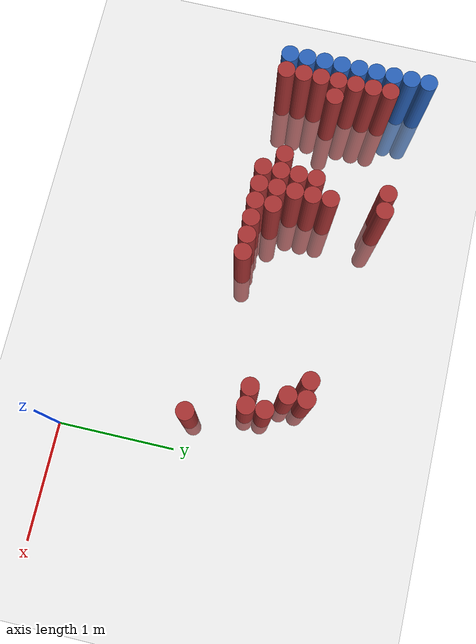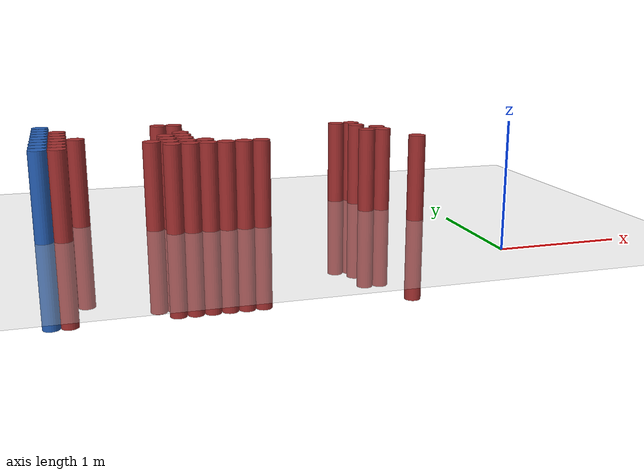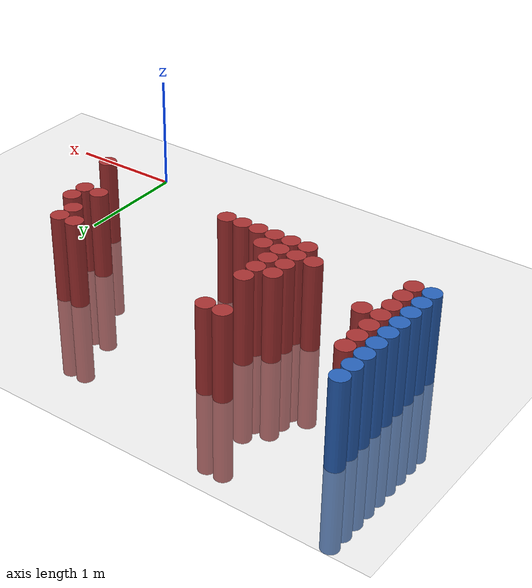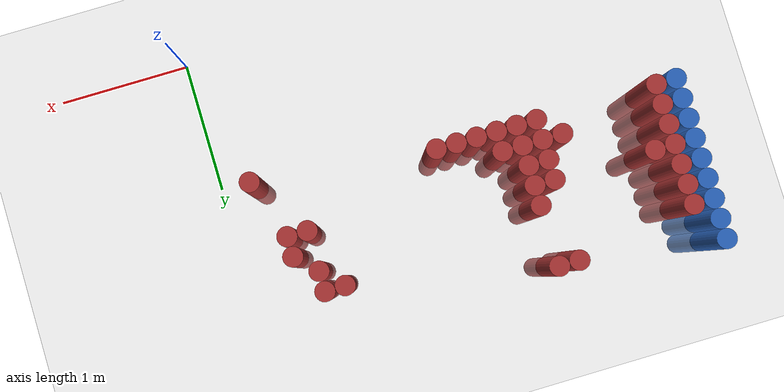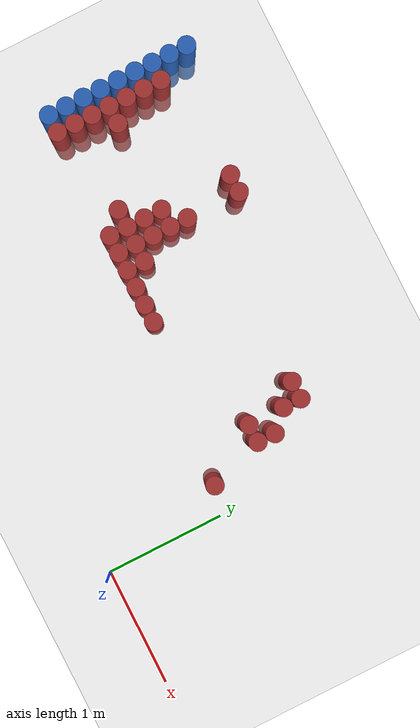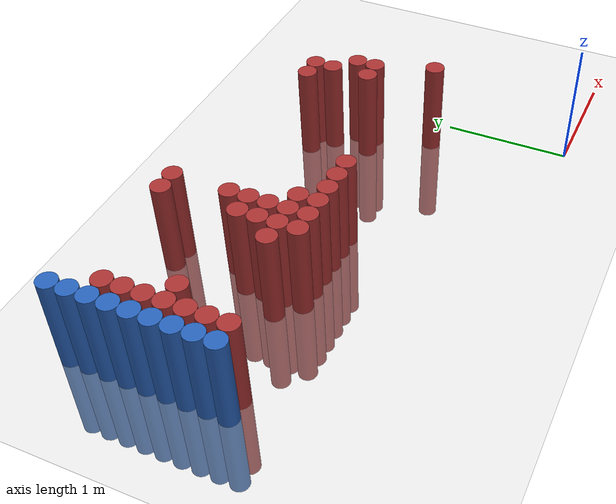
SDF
<sdf version="1.6">
 <world name="default">
  <model name="ground_plane">
   <static>1</static>
   <link name="link">
    <collision name="collision">
     <geometry><plane><normal>0 0 1</normal><size>100 100</size></plane></geometry>
     <surface><friction><ode><mu>100</mu><mu2>50</mu2></ode></friction></surface>
    </collision>
    <visual name="visual">
     <cast_shadows>0</cast_shadows>
     <geometry><plane><normal>0 0 1</normal><size>100 100</size></plane></geometry>
     <material>
      <script><uri>file://media/materials/scripts/gazebo.material</uri><name>Gazebo/Grey</name></script>
     </material>
    </visual>
   </link>
  </model>
  <model name="unit_cylinder_131">
   <static>1</static>
   <pose>-3.425000 1.225000 0.000000 0.000000 0.000000 0.000000</pose>
   <link name="link">
    <inertial>
     <mass>1</mass>
     <inertia><ixx>0.145833</ixx><ixy>0</ixy><ixz>0</ixz><iyy>0.145833</iyy><iyz>0</iyz><izz>0.125</izz></inertia>
    </inertial>
    <collision name="collision">
     <geometry><cylinder><radius>0.075000</radius><length>1.5</length></cylinder></geometry>
    </collision>
    <visual name="visual">
     <geometry><cylinder><radius>0.075000</radius><length>1.5</length></cylinder></geometry>
     <material>
      <ambient>0.152000 0.379000 0.720000 1</ambient>
      <diffuse>0.152000 0.379000 0.720000 1</diffuse>
     </material>
     <material>
      <script><name>Gazebo/Grey</name><uri>file://media/materials/scripts/gazebo.material</uri></script>
     </material>
    </visual>
   </link>
  </model>
  <model name="unit_cylinder_133">
   <static>1</static>
   <pose>-3.425000 1.375000 0.000000 0.000000 0.000000 0.000000</pose>
   <link name="link">
    <inertial>
     <mass>1</mass>
     <inertia><ixx>0.145833</ixx><ixy>0</ixy><ixz>0</ixz><iyy>0.145833</iyy><iyz>0</iyz><izz>0.125</izz></inertia>
    </inertial>
    <collision name="collision">
     <geometry><cylinder><radius>0.075000</radius><length>1.5</length></cylinder></geometry>
    </collision>
    <visual name="visual">
     <geometry><cylinder><radius>0.075000</radius><length>1.5</length></cylinder></geometry>
     <material>
      <ambient>0.152000 0.379000 0.720000 1</ambient>
      <diffuse>0.152000 0.379000 0.720000 1</diffuse>
     </material>
     <material>
      <script><name>Gazebo/Grey</name><uri>file://media/materials/scripts/gazebo.material</uri></script>
     </material>
    </visual>
   </link>
  </model>
  <model name="unit_cylinder_135">
   <static>1</static>
   <pose>-3.425000 1.525000 0.000000 0.000000 0.000000 0.000000</pose>
   <link name="link">
    <inertial>
     <mass>1</mass>
     <inertia><ixx>0.145833</ixx><ixy>0</ixy><ixz>0</ixz><iyy>0.145833</iyy><iyz>0</iyz><izz>0.125</izz></inertia>
    </inertial>
    <collision name="collision">
     <geometry><cylinder><radius>0.075000</radius><length>1.5</length></cylinder></geometry>
    </collision>
    <visual name="visual">
     <geometry><cylinder><radius>0.075000</radius><length>1.5</length></cylinder></geometry>
     <material>
      <ambient>0.152000 0.379000 0.720000 1</ambient>
      <diffuse>0.152000 0.379000 0.720000 1</diffuse>
     </material>
     <material>
      <script><name>Gazebo/Grey</name><uri>file://media/materials/scripts/gazebo.material</uri></script>
     </material>
    </visual>
   </link>
  </model>
  <model name="unit_cylinder_137">
   <static>1</static>
   <pose>-3.425000 1.675000 0.000000 0.000000 0.000000 0.000000</pose>
   <link name="link">
    <inertial>
     <mass>1</mass>
     <inertia><ixx>0.145833</ixx><ixy>0</ixy><ixz>0</ixz><iyy>0.145833</iyy><iyz>0</iyz><izz>0.125</izz></inertia>
    </inertial>
    <collision name="collision">
     <geometry><cylinder><radius>0.075000</radius><length>1.5</length></cylinder></geometry>
    </collision>
    <visual name="visual">
     <geometry><cylinder><radius>0.075000</radius><length>1.5</length></cylinder></geometry>
     <material>
      <ambient>0.152000 0.379000 0.720000 1</ambient>
      <diffuse>0.152000 0.379000 0.720000 1</diffuse>
     </material>
     <material>
      <script><name>Gazebo/Grey</name><uri>file://media/materials/scripts/gazebo.material</uri></script>
     </material>
    </visual>
   </link>
  </model>
  <model name="unit_cylinder_139">
   <static>1</static>
   <pose>-3.425000 1.825000 0.000000 0.000000 0.000000 0.000000</pose>
   <link name="link">
    <inertial>
     <mass>1</mass>
     <inertia><ixx>0.145833</ixx><ixy>0</ixy><ixz>0</ixz><iyy>0.145833</iyy><iyz>0</iyz><izz>0.125</izz></inertia>
    </inertial>
    <collision name="collision">
     <geometry><cylinder><radius>0.075000</radius><length>1.5</length></cylinder></geometry>
    </collision>
    <visual name="visual">
     <geometry><cylinder><radius>0.075000</radius><length>1.5</length></cylinder></geometry>
     <material>
      <ambient>0.152000 0.379000 0.720000 1</ambient>
      <diffuse>0.152000 0.379000 0.720000 1</diffuse>
     </material>
     <material>
      <script><name>Gazebo/Grey</name><uri>file://media/materials/scripts/gazebo.material</uri></script>
     </material>
    </visual>
   </link>
  </model>
  <model name="unit_cylinder_141">
   <static>1</static>
   <pose>-3.425000 1.975000 0.000000 0.000000 0.000000 0.000000</pose>
   <link name="link">
    <inertial>
     <mass>1</mass>
     <inertia><ixx>0.145833</ixx><ixy>0</ixy><ixz>0</ixz><iyy>0.145833</iyy><iyz>0</iyz><izz>0.125</izz></inertia>
    </inertial>
    <collision name="collision">
     <geometry><cylinder><radius>0.075000</radius><length>1.5</length></cylinder></geometry>
    </collision>
    <visual name="visual">
     <geometry><cylinder><radius>0.075000</radius><length>1.5</length></cylinder></geometry>
     <material>
      <ambient>0.152000 0.379000 0.720000 1</ambient>
      <diffuse>0.152000 0.379000 0.720000 1</diffuse>
     </material>
     <material>
      <script><name>Gazebo/Grey</name><uri>file://media/materials/scripts/gazebo.material</uri></script>
     </material>
    </visual>
   </link>
  </model>
  <model name="unit_cylinder_143">
   <static>1</static>
   <pose>-3.425000 2.125000 0.000000 0.000000 0.000000 0.000000</pose>
   <link name="link">
    <inertial>
     <mass>1</mass>
     <inertia><ixx>0.145833</ixx><ixy>0</ixy><ixz>0</ixz><iyy>0.145833</iyy><iyz>0</iyz><izz>0.125</izz></inertia>
    </inertial>
    <collision name="collision">
     <geometry><cylinder><radius>0.075000</radius><length>1.5</length></cylinder></geometry>
    </collision>
    <visual name="visual">
     <geometry><cylinder><radius>0.075000</radius><length>1.5</length></cylinder></geometry>
     <material>
      <ambient>0.152000 0.379000 0.720000 1</ambient>
      <diffuse>0.152000 0.379000 0.720000 1</diffuse>
     </material>
     <material>
      <script><name>Gazebo/Grey</name><uri>file://media/materials/scripts/gazebo.material</uri></script>
     </material>
    </visual>
   </link>
  </model>
  <model name="unit_cylinder_145">
   <static>1</static>
   <pose>-3.425000 2.275000 0.000000 0.000000 0.000000 0.000000</pose>
   <link name="link">
    <inertial>
     <mass>1</mass>
     <inertia><ixx>0.145833</ixx><ixy>0</ixy><ixz>0</ixz><iyy>0.145833</iyy><iyz>0</iyz><izz>0.125</izz></inertia>
    </inertial>
    <collision name="collision">
     <geometry><cylinder><radius>0.075000</radius><length>1.5</length></cylinder></geometry>
    </collision>
    <visual name="visual">
     <geometry><cylinder><radius>0.075000</radius><length>1.5</length></cylinder></geometry>
     <material>
      <ambient>0.152000 0.379000 0.720000 1</ambient>
      <diffuse>0.152000 0.379000 0.720000 1</diffuse>
     </material>
     <material>
      <script><name>Gazebo/Grey</name><uri>file://media/materials/scripts/gazebo.material</uri></script>
     </material>
    </visual>
   </link>
  </model>
  <model name="unit_cylinder_147">
   <static>1</static>
   <pose>-3.425000 2.425000 0.000000 0.000000 0.000000 0.000000</pose>
   <link name="link">
    <inertial>
     <mass>1</mass>
     <inertia><ixx>0.145833</ixx><ixy>0</ixy><ixz>0</ixz><iyy>0.145833</iyy><iyz>0</iyz><izz>0.125</izz></inertia>
    </inertial>
    <collision name="collision">
     <geometry><cylinder><radius>0.075000</radius><length>1.5</length></cylinder></geometry>
    </collision>
    <visual name="visual">
     <geometry><cylinder><radius>0.075000</radius><length>1.5</length></cylinder></geometry>
     <material>
      <ambient>0.152000 0.379000 0.720000 1</ambient>
      <diffuse>0.152000 0.379000 0.720000 1</diffuse>
     </material>
     <material>
      <script><name>Gazebo/Grey</name><uri>file://media/materials/scripts/gazebo.material</uri></script>
     </material>
    </visual>
   </link>
  </model>
  <model name="unit_cylinder_229">
   <static>1</static>
   <pose>-3.425000 1.225000 0.000000 0.000000 0.000000 0.000000</pose>
   <link name="link">
    <inertial>
     <mass>1</mass>
     <inertia><ixx>0.145833</ixx><ixy>0</ixy><ixz>0</ixz><iyy>0.145833</iyy><iyz>0</iyz><izz>0.125</izz></inertia>
    </inertial>
    <collision name="collision">
     <geometry><cylinder><radius>0.075000</radius><length>1.5</length></cylinder></geometry>
    </collision>
    <visual name="visual">
     <geometry><cylinder><radius>0.075000</radius><length>1.5</length></cylinder></geometry>
     <material>
      <ambient>0.152000 0.379000 0.720000 1</ambient>
      <diffuse>0.152000 0.379000 0.720000 1</diffuse>
     </material>
     <material>
      <script><name>Gazebo/Grey</name><uri>file://media/materials/scripts/gazebo.material</uri></script>
     </material>
    </visual>
   </link>
  </model>
  <model name="unit_cylinder_230">
   <static>1</static>
   <pose>-3.425000 1.375000 0.000000 0.000000 0.000000 0.000000</pose>
   <link name="link">
    <inertial>
     <mass>1</mass>
     <inertia><ixx>0.145833</ixx><ixy>0</ixy><ixz>0</ixz><iyy>0.145833</iyy><iyz>0</iyz><izz>0.125</izz></inertia>
    </inertial>
    <collision name="collision">
     <geometry><cylinder><radius>0.075000</radius><length>1.5</length></cylinder></geometry>
    </collision>
    <visual name="visual">
     <geometry><cylinder><radius>0.075000</radius><length>1.5</length></cylinder></geometry>
     <material>
      <ambient>0.152000 0.379000 0.720000 1</ambient>
      <diffuse>0.152000 0.379000 0.720000 1</diffuse>
     </material>
     <material>
      <script><name>Gazebo/Grey</name><uri>file://media/materials/scripts/gazebo.material</uri></script>
     </material>
    </visual>
   </link>
  </model>
  <model name="unit_cylinder_231">
   <static>1</static>
   <pose>-3.425000 1.525000 0.000000 0.000000 0.000000 0.000000</pose>
   <link name="link">
    <inertial>
     <mass>1</mass>
     <inertia><ixx>0.145833</ixx><ixy>0</ixy><ixz>0</ixz><iyy>0.145833</iyy><iyz>0</iyz><izz>0.125</izz></inertia>
    </inertial>
    <collision name="collision">
     <geometry><cylinder><radius>0.075000</radius><length>1.5</length></cylinder></geometry>
    </collision>
    <visual name="visual">
     <geometry><cylinder><radius>0.075000</radius><length>1.5</length></cylinder></geometry>
     <material>
      <ambient>0.152000 0.379000 0.720000 1</ambient>
      <diffuse>0.152000 0.379000 0.720000 1</diffuse>
     </material>
     <material>
      <script><name>Gazebo/Grey</name><uri>file://media/materials/scripts/gazebo.material</uri></script>
     </material>
    </visual>
   </link>
  </model>
  <model name="unit_cylinder_232">
   <static>1</static>
   <pose>-3.425000 1.675000 0.000000 0.000000 0.000000 0.000000</pose>
   <link name="link">
    <inertial>
     <mass>1</mass>
     <inertia><ixx>0.145833</ixx><ixy>0</ixy><ixz>0</ixz><iyy>0.145833</iyy><iyz>0</iyz><izz>0.125</izz></inertia>
    </inertial>
    <collision name="collision">
     <geometry><cylinder><radius>0.075000</radius><length>1.5</length></cylinder></geometry>
    </collision>
    <visual name="visual">
     <geometry><cylinder><radius>0.075000</radius><length>1.5</length></cylinder></geometry>
     <material>
      <ambient>0.152000 0.379000 0.720000 1</ambient>
      <diffuse>0.152000 0.379000 0.720000 1</diffuse>
     </material>
     <material>
      <script><name>Gazebo/Grey</name><uri>file://media/materials/scripts/gazebo.material</uri></script>
     </material>
    </visual>
   </link>
  </model>
  <model name="unit_cylinder_233">
   <static>1</static>
   <pose>-3.425000 1.825000 0.000000 0.000000 0.000000 0.000000</pose>
   <link name="link">
    <inertial>
     <mass>1</mass>
     <inertia><ixx>0.145833</ixx><ixy>0</ixy><ixz>0</ixz><iyy>0.145833</iyy><iyz>0</iyz><izz>0.125</izz></inertia>
    </inertial>
    <collision name="collision">
     <geometry><cylinder><radius>0.075000</radius><length>1.5</length></cylinder></geometry>
    </collision>
    <visual name="visual">
     <geometry><cylinder><radius>0.075000</radius><length>1.5</length></cylinder></geometry>
     <material>
      <ambient>0.152000 0.379000 0.720000 1</ambient>
      <diffuse>0.152000 0.379000 0.720000 1</diffuse>
     </material>
     <material>
      <script><name>Gazebo/Grey</name><uri>file://media/materials/scripts/gazebo.material</uri></script>
     </material>
    </visual>
   </link>
  </model>
  <model name="unit_cylinder_234">
   <static>1</static>
   <pose>-3.425000 1.975000 0.000000 0.000000 0.000000 0.000000</pose>
   <link name="link">
    <inertial>
     <mass>1</mass>
     <inertia><ixx>0.145833</ixx><ixy>0</ixy><ixz>0</ixz><iyy>0.145833</iyy><iyz>0</iyz><izz>0.125</izz></inertia>
    </inertial>
    <collision name="collision">
     <geometry><cylinder><radius>0.075000</radius><length>1.5</length></cylinder></geometry>
    </collision>
    <visual name="visual">
     <geometry><cylinder><radius>0.075000</radius><length>1.5</length></cylinder></geometry>
     <material>
      <ambient>0.152000 0.379000 0.720000 1</ambient>
      <diffuse>0.152000 0.379000 0.720000 1</diffuse>
     </material>
     <material>
      <script><name>Gazebo/Grey</name><uri>file://media/materials/scripts/gazebo.material</uri></script>
     </material>
    </visual>
   </link>
  </model>
  <model name="unit_cylinder_235">
   <static>1</static>
   <pose>-3.425000 2.125000 0.000000 0.000000 0.000000 0.000000</pose>
   <link name="link">
    <inertial>
     <mass>1</mass>
     <inertia><ixx>0.145833</ixx><ixy>0</ixy><ixz>0</ixz><iyy>0.145833</iyy><iyz>0</iyz><izz>0.125</izz></inertia>
    </inertial>
    <collision name="collision">
     <geometry><cylinder><radius>0.075000</radius><length>1.5</length></cylinder></geometry>
    </collision>
    <visual name="visual">
     <geometry><cylinder><radius>0.075000</radius><length>1.5</length></cylinder></geometry>
     <material>
      <ambient>0.152000 0.379000 0.720000 1</ambient>
      <diffuse>0.152000 0.379000 0.720000 1</diffuse>
     </material>
     <material>
      <script><name>Gazebo/Grey</name><uri>file://media/materials/scripts/gazebo.material</uri></script>
     </material>
    </visual>
   </link>
  </model>
  <model name="unit_cylinder_236">
   <static>1</static>
   <pose>-3.425000 2.275000 0.000000 0.000000 0.000000 0.000000</pose>
   <link name="link">
    <inertial>
     <mass>1</mass>
     <inertia><ixx>0.145833</ixx><ixy>0</ixy><ixz>0</ixz><iyy>0.145833</iyy><iyz>0</iyz><izz>0.125</izz></inertia>
    </inertial>
    <collision name="collision">
     <geometry><cylinder><radius>0.075000</radius><length>1.5</length></cylinder></geometry>
    </collision>
    <visual name="visual">
     <geometry><cylinder><radius>0.075000</radius><length>1.5</length></cylinder></geometry>
     <material>
      <ambient>0.152000 0.379000 0.720000 1</ambient>
      <diffuse>0.152000 0.379000 0.720000 1</diffuse>
     </material>
     <material>
      <script><name>Gazebo/Grey</name><uri>file://media/materials/scripts/gazebo.material</uri></script>
     </material>
    </visual>
   </link>
  </model>
  <model name="unit_cylinder_237">
   <static>1</static>
   <pose>-3.425000 2.425000 0.000000 0.000000 0.000000 0.000000</pose>
   <link name="link">
    <inertial>
     <mass>1</mass>
     <inertia><ixx>0.145833</ixx><ixy>0</ixy><ixz>0</ixz><iyy>0.145833</iyy><iyz>0</iyz><izz>0.125</izz></inertia>
    </inertial>
    <collision name="collision">
     <geometry><cylinder><radius>0.075000</radius><length>1.5</length></cylinder></geometry>
    </collision>
    <visual name="visual">
     <geometry><cylinder><radius>0.075000</radius><length>1.5</length></cylinder></geometry>
     <material>
      <ambient>0.152000 0.379000 0.720000 1</ambient>
      <diffuse>0.152000 0.379000 0.720000 1</diffuse>
     </material>
     <material>
      <script><name>Gazebo/Grey</name><uri>file://media/materials/scripts/gazebo.material</uri></script>
     </material>
    </visual>
   </link>
  </model>
  <model name="unit_cylinder_271">
   <static>1</static>
   <pose>-3.275000 1.225000 0.000000 0.000000 0.000000 0.000000</pose>
   <link name="link">
    <inertial>
     <mass>1</mass>
     <inertia><ixx>0.145833</ixx><ixy>0</ixy><ixz>0</ixz><iyy>0.145833</iyy><iyz>0</iyz><izz>0.125</izz></inertia>
    </inertial>
    <collision name="collision">
     <geometry><cylinder><radius>0.075000</radius><length>1.5</length></cylinder></geometry>
    </collision>
    <visual name="visual">
     <geometry><cylinder><radius>0.075000</radius><length>1.5</length></cylinder></geometry>
     <material>
      <ambient>0.648000 0.192000 0.192000 1</ambient>
      <diffuse>0.648000 0.192000 0.192000 1</diffuse>
     </material>
     <material>
      <script><name>Gazebo/Grey</name><uri>file://media/materials/scripts/gazebo.material</uri></script>
     </material>
    </visual>
   </link>
  </model>
  <model name="unit_cylinder_272">
   <static>1</static>
   <pose>-3.275000 1.375000 0.000000 0.000000 0.000000 0.000000</pose>
   <link name="link">
    <inertial>
     <mass>1</mass>
     <inertia><ixx>0.145833</ixx><ixy>0</ixy><ixz>0</ixz><iyy>0.145833</iyy><iyz>0</iyz><izz>0.125</izz></inertia>
    </inertial>
    <collision name="collision">
     <geometry><cylinder><radius>0.075000</radius><length>1.5</length></cylinder></geometry>
    </collision>
    <visual name="visual">
     <geometry><cylinder><radius>0.075000</radius><length>1.5</length></cylinder></geometry>
     <material>
      <ambient>0.648000 0.192000 0.192000 1</ambient>
      <diffuse>0.648000 0.192000 0.192000 1</diffuse>
     </material>
     <material>
      <script><name>Gazebo/Grey</name><uri>file://media/materials/scripts/gazebo.material</uri></script>
     </material>
    </visual>
   </link>
  </model>
  <model name="unit_cylinder_273">
   <static>1</static>
   <pose>-3.275000 1.525000 0.000000 0.000000 0.000000 0.000000</pose>
   <link name="link">
    <inertial>
     <mass>1</mass>
     <inertia><ixx>0.145833</ixx><ixy>0</ixy><ixz>0</ixz><iyy>0.145833</iyy><iyz>0</iyz><izz>0.125</izz></inertia>
    </inertial>
    <collision name="collision">
     <geometry><cylinder><radius>0.075000</radius><length>1.5</length></cylinder></geometry>
    </collision>
    <visual name="visual">
     <geometry><cylinder><radius>0.075000</radius><length>1.5</length></cylinder></geometry>
     <material>
      <ambient>0.648000 0.192000 0.192000 1</ambient>
      <diffuse>0.648000 0.192000 0.192000 1</diffuse>
     </material>
     <material>
      <script><name>Gazebo/Grey</name><uri>file://media/materials/scripts/gazebo.material</uri></script>
     </material>
    </visual>
   </link>
  </model>
  <model name="unit_cylinder_274">
   <static>1</static>
   <pose>-3.275000 1.675000 0.000000 0.000000 0.000000 0.000000</pose>
   <link name="link">
    <inertial>
     <mass>1</mass>
     <inertia><ixx>0.145833</ixx><ixy>0</ixy><ixz>0</ixz><iyy>0.145833</iyy><iyz>0</iyz><izz>0.125</izz></inertia>
    </inertial>
    <collision name="collision">
     <geometry><cylinder><radius>0.075000</radius><length>1.5</length></cylinder></geometry>
    </collision>
    <visual name="visual">
     <geometry><cylinder><radius>0.075000</radius><length>1.5</length></cylinder></geometry>
     <material>
      <ambient>0.648000 0.192000 0.192000 1</ambient>
      <diffuse>0.648000 0.192000 0.192000 1</diffuse>
     </material>
     <material>
      <script><name>Gazebo/Grey</name><uri>file://media/materials/scripts/gazebo.material</uri></script>
     </material>
    </visual>
   </link>
  </model>
  <model name="unit_cylinder_275">
   <static>1</static>
   <pose>-3.275000 1.825000 0.000000 0.000000 0.000000 0.000000</pose>
   <link name="link">
    <inertial>
     <mass>1</mass>
     <inertia><ixx>0.145833</ixx><ixy>0</ixy><ixz>0</ixz><iyy>0.145833</iyy><iyz>0</iyz><izz>0.125</izz></inertia>
    </inertial>
    <collision name="collision">
     <geometry><cylinder><radius>0.075000</radius><length>1.5</length></cylinder></geometry>
    </collision>
    <visual name="visual">
     <geometry><cylinder><radius>0.075000</radius><length>1.5</length></cylinder></geometry>
     <material>
      <ambient>0.648000 0.192000 0.192000 1</ambient>
      <diffuse>0.648000 0.192000 0.192000 1</diffuse>
     </material>
     <material>
      <script><name>Gazebo/Grey</name><uri>file://media/materials/scripts/gazebo.material</uri></script>
     </material>
    </visual>
   </link>
  </model>
  <model name="unit_cylinder_276">
   <static>1</static>
   <pose>-3.275000 1.975000 0.000000 0.000000 0.000000 0.000000</pose>
   <link name="link">
    <inertial>
     <mass>1</mass>
     <inertia><ixx>0.145833</ixx><ixy>0</ixy><ixz>0</ixz><iyy>0.145833</iyy><iyz>0</iyz><izz>0.125</izz></inertia>
    </inertial>
    <collision name="collision">
     <geometry><cylinder><radius>0.075000</radius><length>1.5</length></cylinder></geometry>
    </collision>
    <visual name="visual">
     <geometry><cylinder><radius>0.075000</radius><length>1.5</length></cylinder></geometry>
     <material>
      <ambient>0.648000 0.192000 0.192000 1</ambient>
      <diffuse>0.648000 0.192000 0.192000 1</diffuse>
     </material>
     <material>
      <script><name>Gazebo/Grey</name><uri>file://media/materials/scripts/gazebo.material</uri></script>
     </material>
    </visual>
   </link>
  </model>
  <model name="unit_cylinder_277">
   <static>1</static>
   <pose>-3.275000 2.125000 0.000000 0.000000 0.000000 0.000000</pose>
   <link name="link">
    <inertial>
     <mass>1</mass>
     <inertia><ixx>0.145833</ixx><ixy>0</ixy><ixz>0</ixz><iyy>0.145833</iyy><iyz>0</iyz><izz>0.125</izz></inertia>
    </inertial>
    <collision name="collision">
     <geometry><cylinder><radius>0.075000</radius><length>1.5</length></cylinder></geometry>
    </collision>
    <visual name="visual">
     <geometry><cylinder><radius>0.075000</radius><length>1.5</length></cylinder></geometry>
     <material>
      <ambient>0.648000 0.192000 0.192000 1</ambient>
      <diffuse>0.648000 0.192000 0.192000 1</diffuse>
     </material>
     <material>
      <script><name>Gazebo/Grey</name><uri>file://media/materials/scripts/gazebo.material</uri></script>
     </material>
    </visual>
   </link>
  </model>
  <model name="unit_cylinder_279">
   <static>1</static>
   <pose>-3.125000 1.675000 0.000000 0.000000 0.000000 0.000000</pose>
   <link name="link">
    <inertial>
     <mass>1</mass>
     <inertia><ixx>0.145833</ixx><ixy>0</ixy><ixz>0</ixz><iyy>0.145833</iyy><iyz>0</iyz><izz>0.125</izz></inertia>
    </inertial>
    <collision name="collision">
     <geometry><cylinder><radius>0.075000</radius><length>1.5</length></cylinder></geometry>
    </collision>
    <visual name="visual">
     <geometry><cylinder><radius>0.075000</radius><length>1.5</length></cylinder></geometry>
     <material>
      <ambient>0.648000 0.192000 0.192000 1</ambient>
      <diffuse>0.648000 0.192000 0.192000 1</diffuse>
     </material>
     <material>
      <script><name>Gazebo/Grey</name><uri>file://media/materials/scripts/gazebo.material</uri></script>
     </material>
    </visual>
   </link>
  </model>
  <model name="unit_cylinder_300">
   <static>1</static>
   <pose>-2.525000 1.375000 0.000000 0.000000 0.000000 0.000000</pose>
   <link name="link">
    <inertial>
     <mass>1</mass>
     <inertia><ixx>0.145833</ixx><ixy>0</ixy><ixz>0</ixz><iyy>0.145833</iyy><iyz>0</iyz><izz>0.125</izz></inertia>
    </inertial>
    <collision name="collision">
     <geometry><cylinder><radius>0.075000</radius><length>1.5</length></cylinder></geometry>
    </collision>
    <visual name="visual">
     <geometry><cylinder><radius>0.075000</radius><length>1.5</length></cylinder></geometry>
     <material>
      <ambient>0.648000 0.192000 0.192000 1</ambient>
      <diffuse>0.648000 0.192000 0.192000 1</diffuse>
     </material>
     <material>
      <script><name>Gazebo/Grey</name><uri>file://media/materials/scripts/gazebo.material</uri></script>
     </material>
    </visual>
   </link>
  </model>
  <model name="unit_cylinder_308">
   <static>1</static>
   <pose>-2.375000 1.225000 0.000000 0.000000 0.000000 0.000000</pose>
   <link name="link">
    <inertial>
     <mass>1</mass>
     <inertia><ixx>0.145833</ixx><ixy>0</ixy><ixz>0</ixz><iyy>0.145833</iyy><iyz>0</iyz><izz>0.125</izz></inertia>
    </inertial>
    <collision name="collision">
     <geometry><cylinder><radius>0.075000</radius><length>1.5</length></cylinder></geometry>
    </collision>
    <visual name="visual">
     <geometry><cylinder><radius>0.075000</radius><length>1.5</length></cylinder></geometry>
     <material>
      <ambient>0.648000 0.192000 0.192000 1</ambient>
      <diffuse>0.648000 0.192000 0.192000 1</diffuse>
     </material>
     <material>
      <script><name>Gazebo/Grey</name><uri>file://media/materials/scripts/gazebo.material</uri></script>
     </material>
    </visual>
   </link>
  </model>
  <model name="unit_cylinder_309">
   <static>1</static>
   <pose>-2.375000 1.375000 0.000000 0.000000 0.000000 0.000000</pose>
   <link name="link">
    <inertial>
     <mass>1</mass>
     <inertia><ixx>0.145833</ixx><ixy>0</ixy><ixz>0</ixz><iyy>0.145833</iyy><iyz>0</iyz><izz>0.125</izz></inertia>
    </inertial>
    <collision name="collision">
     <geometry><cylinder><radius>0.075000</radius><length>1.5</length></cylinder></geometry>
    </collision>
    <visual name="visual">
     <geometry><cylinder><radius>0.075000</radius><length>1.5</length></cylinder></geometry>
     <material>
      <ambient>0.648000 0.192000 0.192000 1</ambient>
      <diffuse>0.648000 0.192000 0.192000 1</diffuse>
     </material>
     <material>
      <script><name>Gazebo/Grey</name><uri>file://media/materials/scripts/gazebo.material</uri></script>
     </material>
    </visual>
   </link>
  </model>
  <model name="unit_cylinder_310">
   <static>1</static>
   <pose>-2.375000 1.525000 0.000000 0.000000 0.000000 0.000000</pose>
   <link name="link">
    <inertial>
     <mass>1</mass>
     <inertia><ixx>0.145833</ixx><ixy>0</ixy><ixz>0</ixz><iyy>0.145833</iyy><iyz>0</iyz><izz>0.125</izz></inertia>
    </inertial>
    <collision name="collision">
     <geometry><cylinder><radius>0.075000</radius><length>1.5</length></cylinder></geometry>
    </collision>
    <visual name="visual">
     <geometry><cylinder><radius>0.075000</radius><length>1.5</length></cylinder></geometry>
     <material>
      <ambient>0.648000 0.192000 0.192000 1</ambient>
      <diffuse>0.648000 0.192000 0.192000 1</diffuse>
     </material>
     <material>
      <script><name>Gazebo/Grey</name><uri>file://media/materials/scripts/gazebo.material</uri></script>
     </material>
    </visual>
   </link>
  </model>
  <model name="unit_cylinder_311">
   <static>1</static>
   <pose>-2.375000 1.675000 0.000000 0.000000 0.000000 0.000000</pose>
   <link name="link">
    <inertial>
     <mass>1</mass>
     <inertia><ixx>0.145833</ixx><ixy>0</ixy><ixz>0</ixz><iyy>0.145833</iyy><iyz>0</iyz><izz>0.125</izz></inertia>
    </inertial>
    <collision name="collision">
     <geometry><cylinder><radius>0.075000</radius><length>1.5</length></cylinder></geometry>
    </collision>
    <visual name="visual">
     <geometry><cylinder><radius>0.075000</radius><length>1.5</length></cylinder></geometry>
     <material>
      <ambient>0.648000 0.192000 0.192000 1</ambient>
      <diffuse>0.648000 0.192000 0.192000 1</diffuse>
     </material>
     <material>
      <script><name>Gazebo/Grey</name><uri>file://media/materials/scripts/gazebo.material</uri></script>
     </material>
    </visual>
   </link>
  </model>
  <model name="unit_cylinder_312">
   <static>1</static>
   <pose>-2.375000 2.275000 0.000000 0.000000 0.000000 0.000000</pose>
   <link name="link">
    <inertial>
     <mass>1</mass>
     <inertia><ixx>0.145833</ixx><ixy>0</ixy><ixz>0</ixz><iyy>0.145833</iyy><iyz>0</iyz><izz>0.125</izz></inertia>
    </inertial>
    <collision name="collision">
     <geometry><cylinder><radius>0.075000</radius><length>1.5</length></cylinder></geometry>
    </collision>
    <visual name="visual">
     <geometry><cylinder><radius>0.075000</radius><length>1.5</length></cylinder></geometry>
     <material>
      <ambient>0.648000 0.192000 0.192000 1</ambient>
      <diffuse>0.648000 0.192000 0.192000 1</diffuse>
     </material>
     <material>
      <script><name>Gazebo/Grey</name><uri>file://media/materials/scripts/gazebo.material</uri></script>
     </material>
    </visual>
   </link>
  </model>
  <model name="unit_cylinder_316">
   <static>1</static>
   <pose>-2.225000 1.225000 0.000000 0.000000 0.000000 0.000000</pose>
   <link name="link">
    <inertial>
     <mass>1</mass>
     <inertia><ixx>0.145833</ixx><ixy>0</ixy><ixz>0</ixz><iyy>0.145833</iyy><iyz>0</iyz><izz>0.125</izz></inertia>
    </inertial>
    <collision name="collision">
     <geometry><cylinder><radius>0.075000</radius><length>1.5</length></cylinder></geometry>
    </collision>
    <visual name="visual">
     <geometry><cylinder><radius>0.075000</radius><length>1.5</length></cylinder></geometry>
     <material>
      <ambient>0.648000 0.192000 0.192000 1</ambient>
      <diffuse>0.648000 0.192000 0.192000 1</diffuse>
     </material>
     <material>
      <script><name>Gazebo/Grey</name><uri>file://media/materials/scripts/gazebo.material</uri></script>
     </material>
    </visual>
   </link>
  </model>
  <model name="unit_cylinder_317">
   <static>1</static>
   <pose>-2.225000 1.375000 0.000000 0.000000 0.000000 0.000000</pose>
   <link name="link">
    <inertial>
     <mass>1</mass>
     <inertia><ixx>0.145833</ixx><ixy>0</ixy><ixz>0</ixz><iyy>0.145833</iyy><iyz>0</iyz><izz>0.125</izz></inertia>
    </inertial>
    <collision name="collision">
     <geometry><cylinder><radius>0.075000</radius><length>1.5</length></cylinder></geometry>
    </collision>
    <visual name="visual">
     <geometry><cylinder><radius>0.075000</radius><length>1.5</length></cylinder></geometry>
     <material>
      <ambient>0.648000 0.192000 0.192000 1</ambient>
      <diffuse>0.648000 0.192000 0.192000 1</diffuse>
     </material>
     <material>
      <script><name>Gazebo/Grey</name><uri>file://media/materials/scripts/gazebo.material</uri></script>
     </material>
    </visual>
   </link>
  </model>
  <model name="unit_cylinder_318">
   <static>1</static>
   <pose>-2.225000 1.525000 0.000000 0.000000 0.000000 0.000000</pose>
   <link name="link">
    <inertial>
     <mass>1</mass>
     <inertia><ixx>0.145833</ixx><ixy>0</ixy><ixz>0</ixz><iyy>0.145833</iyy><iyz>0</iyz><izz>0.125</izz></inertia>
    </inertial>
    <collision name="collision">
     <geometry><cylinder><radius>0.075000</radius><length>1.5</length></cylinder></geometry>
    </collision>
    <visual name="visual">
     <geometry><cylinder><radius>0.075000</radius><length>1.5</length></cylinder></geometry>
     <material>
      <ambient>0.648000 0.192000 0.192000 1</ambient>
      <diffuse>0.648000 0.192000 0.192000 1</diffuse>
     </material>
     <material>
      <script><name>Gazebo/Grey</name><uri>file://media/materials/scripts/gazebo.material</uri></script>
     </material>
    </visual>
   </link>
  </model>
  <model name="unit_cylinder_319">
   <static>1</static>
   <pose>-2.225000 1.675000 0.000000 0.000000 0.000000 0.000000</pose>
   <link name="link">
    <inertial>
     <mass>1</mass>
     <inertia><ixx>0.145833</ixx><ixy>0</ixy><ixz>0</ixz><iyy>0.145833</iyy><iyz>0</iyz><izz>0.125</izz></inertia>
    </inertial>
    <collision name="collision">
     <geometry><cylinder><radius>0.075000</radius><length>1.5</length></cylinder></geometry>
    </collision>
    <visual name="visual">
     <geometry><cylinder><radius>0.075000</radius><length>1.5</length></cylinder></geometry>
     <material>
      <ambient>0.648000 0.192000 0.192000 1</ambient>
      <diffuse>0.648000 0.192000 0.192000 1</diffuse>
     </material>
     <material>
      <script><name>Gazebo/Grey</name><uri>file://media/materials/scripts/gazebo.material</uri></script>
     </material>
    </visual>
   </link>
  </model>
  <model name="unit_cylinder_320">
   <static>1</static>
   <pose>-2.225000 1.825000 0.000000 0.000000 0.000000 0.000000</pose>
   <link name="link">
    <inertial>
     <mass>1</mass>
     <inertia><ixx>0.145833</ixx><ixy>0</ixy><ixz>0</ixz><iyy>0.145833</iyy><iyz>0</iyz><izz>0.125</izz></inertia>
    </inertial>
    <collision name="collision">
     <geometry><cylinder><radius>0.075000</radius><length>1.5</length></cylinder></geometry>
    </collision>
    <visual name="visual">
     <geometry><cylinder><radius>0.075000</radius><length>1.5</length></cylinder></geometry>
     <material>
      <ambient>0.648000 0.192000 0.192000 1</ambient>
      <diffuse>0.648000 0.192000 0.192000 1</diffuse>
     </material>
     <material>
      <script><name>Gazebo/Grey</name><uri>file://media/materials/scripts/gazebo.material</uri></script>
     </material>
    </visual>
   </link>
  </model>
  <model name="unit_cylinder_321">
   <static>1</static>
   <pose>-2.225000 2.275000 0.000000 0.000000 0.000000 0.000000</pose>
   <link name="link">
    <inertial>
     <mass>1</mass>
     <inertia><ixx>0.145833</ixx><ixy>0</ixy><ixz>0</ixz><iyy>0.145833</iyy><iyz>0</iyz><izz>0.125</izz></inertia>
    </inertial>
    <collision name="collision">
     <geometry><cylinder><radius>0.075000</radius><length>1.5</length></cylinder></geometry>
    </collision>
    <visual name="visual">
     <geometry><cylinder><radius>0.075000</radius><length>1.5</length></cylinder></geometry>
     <material>
      <ambient>0.648000 0.192000 0.192000 1</ambient>
      <diffuse>0.648000 0.192000 0.192000 1</diffuse>
     </material>
     <material>
      <script><name>Gazebo/Grey</name><uri>file://media/materials/scripts/gazebo.material</uri></script>
     </material>
    </visual>
   </link>
  </model>
  <model name="unit_cylinder_326">
   <static>1</static>
   <pose>-2.075000 1.225000 0.000000 0.000000 0.000000 0.000000</pose>
   <link name="link">
    <inertial>
     <mass>1</mass>
     <inertia><ixx>0.145833</ixx><ixy>0</ixy><ixz>0</ixz><iyy>0.145833</iyy><iyz>0</iyz><izz>0.125</izz></inertia>
    </inertial>
    <collision name="collision">
     <geometry><cylinder><radius>0.075000</radius><length>1.5</length></cylinder></geometry>
    </collision>
    <visual name="visual">
     <geometry><cylinder><radius>0.075000</radius><length>1.5</length></cylinder></geometry>
     <material>
      <ambient>0.648000 0.192000 0.192000 1</ambient>
      <diffuse>0.648000 0.192000 0.192000 1</diffuse>
     </material>
     <material>
      <script><name>Gazebo/Grey</name><uri>file://media/materials/scripts/gazebo.material</uri></script>
     </material>
    </visual>
   </link>
  </model>
  <model name="unit_cylinder_327">
   <static>1</static>
   <pose>-2.075000 1.375000 0.000000 0.000000 0.000000 0.000000</pose>
   <link name="link">
    <inertial>
     <mass>1</mass>
     <inertia><ixx>0.145833</ixx><ixy>0</ixy><ixz>0</ixz><iyy>0.145833</iyy><iyz>0</iyz><izz>0.125</izz></inertia>
    </inertial>
    <collision name="collision">
     <geometry><cylinder><radius>0.075000</radius><length>1.5</length></cylinder></geometry>
    </collision>
    <visual name="visual">
     <geometry><cylinder><radius>0.075000</radius><length>1.5</length></cylinder></geometry>
     <material>
      <ambient>0.648000 0.192000 0.192000 1</ambient>
      <diffuse>0.648000 0.192000 0.192000 1</diffuse>
     </material>
     <material>
      <script><name>Gazebo/Grey</name><uri>file://media/materials/scripts/gazebo.material</uri></script>
     </material>
    </visual>
   </link>
  </model>
  <model name="unit_cylinder_331">
   <static>1</static>
   <pose>-1.925000 1.225000 0.000000 0.000000 0.000000 0.000000</pose>
   <link name="link">
    <inertial>
     <mass>1</mass>
     <inertia><ixx>0.145833</ixx><ixy>0</ixy><ixz>0</ixz><iyy>0.145833</iyy><iyz>0</iyz><izz>0.125</izz></inertia>
    </inertial>
    <collision name="collision">
     <geometry><cylinder><radius>0.075000</radius><length>1.5</length></cylinder></geometry>
    </collision>
    <visual name="visual">
     <geometry><cylinder><radius>0.075000</radius><length>1.5</length></cylinder></geometry>
     <material>
      <ambient>0.648000 0.192000 0.192000 1</ambient>
      <diffuse>0.648000 0.192000 0.192000 1</diffuse>
     </material>
     <material>
      <script><name>Gazebo/Grey</name><uri>file://media/materials/scripts/gazebo.material</uri></script>
     </material>
    </visual>
   </link>
  </model>
  <model name="unit_cylinder_335">
   <static>1</static>
   <pose>-1.775000 1.225000 0.000000 0.000000 0.000000 0.000000</pose>
   <link name="link">
    <inertial>
     <mass>1</mass>
     <inertia><ixx>0.145833</ixx><ixy>0</ixy><ixz>0</ixz><iyy>0.145833</iyy><iyz>0</iyz><izz>0.125</izz></inertia>
    </inertial>
    <collision name="collision">
     <geometry><cylinder><radius>0.075000</radius><length>1.5</length></cylinder></geometry>
    </collision>
    <visual name="visual">
     <geometry><cylinder><radius>0.075000</radius><length>1.5</length></cylinder></geometry>
     <material>
      <ambient>0.648000 0.192000 0.192000 1</ambient>
      <diffuse>0.648000 0.192000 0.192000 1</diffuse>
     </material>
     <material>
      <script><name>Gazebo/Grey</name><uri>file://media/materials/scripts/gazebo.material</uri></script>
     </material>
    </visual>
   </link>
  </model>
  <model name="unit_cylinder_341">
   <static>1</static>
   <pose>-1.625000 1.225000 0.000000 0.000000 0.000000 0.000000</pose>
   <link name="link">
    <inertial>
     <mass>1</mass>
     <inertia><ixx>0.145833</ixx><ixy>0</ixy><ixz>0</ixz><iyy>0.145833</iyy><iyz>0</iyz><izz>0.125</izz></inertia>
    </inertial>
    <collision name="collision">
     <geometry><cylinder><radius>0.075000</radius><length>1.5</length></cylinder></geometry>
    </collision>
    <visual name="visual">
     <geometry><cylinder><radius>0.075000</radius><length>1.5</length></cylinder></geometry>
     <material>
      <ambient>0.648000 0.192000 0.192000 1</ambient>
      <diffuse>0.648000 0.192000 0.192000 1</diffuse>
     </material>
     <material>
      <script><name>Gazebo/Grey</name><uri>file://media/materials/scripts/gazebo.material</uri></script>
     </material>
    </visual>
   </link>
  </model>
  <model name="unit_cylinder_360">
   <static>1</static>
   <pose>-0.725000 1.975000 0.000000 0.000000 0.000000 0.000000</pose>
   <link name="link">
    <inertial>
     <mass>1</mass>
     <inertia><ixx>0.145833</ixx><ixy>0</ixy><ixz>0</ixz><iyy>0.145833</iyy><iyz>0</iyz><izz>0.125</izz></inertia>
    </inertial>
    <collision name="collision">
     <geometry><cylinder><radius>0.075000</radius><length>1.5</length></cylinder></geometry>
    </collision>
    <visual name="visual">
     <geometry><cylinder><radius>0.075000</radius><length>1.5</length></cylinder></geometry>
     <material>
      <ambient>0.648000 0.192000 0.192000 1</ambient>
      <diffuse>0.648000 0.192000 0.192000 1</diffuse>
     </material>
     <material>
      <script><name>Gazebo/Grey</name><uri>file://media/materials/scripts/gazebo.material</uri></script>
     </material>
    </visual>
   </link>
  </model>
  <model name="unit_cylinder_361">
   <static>1</static>
   <pose>-0.575000 1.525000 0.000000 0.000000 0.000000 0.000000</pose>
   <link name="link">
    <inertial>
     <mass>1</mass>
     <inertia><ixx>0.145833</ixx><ixy>0</ixy><ixz>0</ixz><iyy>0.145833</iyy><iyz>0</iyz><izz>0.125</izz></inertia>
    </inertial>
    <collision name="collision">
     <geometry><cylinder><radius>0.075000</radius><length>1.5</length></cylinder></geometry>
    </collision>
    <visual name="visual">
     <geometry><cylinder><radius>0.075000</radius><length>1.5</length></cylinder></geometry>
     <material>
      <ambient>0.648000 0.192000 0.192000 1</ambient>
      <diffuse>0.648000 0.192000 0.192000 1</diffuse>
     </material>
     <material>
      <script><name>Gazebo/Grey</name><uri>file://media/materials/scripts/gazebo.material</uri></script>
     </material>
    </visual>
   </link>
  </model>
  <model name="unit_cylinder_362">
   <static>1</static>
   <pose>-0.575000 1.825000 0.000000 0.000000 0.000000 0.000000</pose>
   <link name="link">
    <inertial>
     <mass>1</mass>
     <inertia><ixx>0.145833</ixx><ixy>0</ixy><ixz>0</ixz><iyy>0.145833</iyy><iyz>0</iyz><izz>0.125</izz></inertia>
    </inertial>
    <collision name="collision">
     <geometry><cylinder><radius>0.075000</radius><length>1.5</length></cylinder></geometry>
    </collision>
    <visual name="visual">
     <geometry><cylinder><radius>0.075000</radius><length>1.5</length></cylinder></geometry>
     <material>
      <ambient>0.648000 0.192000 0.192000 1</ambient>
      <diffuse>0.648000 0.192000 0.192000 1</diffuse>
     </material>
     <material>
      <script><name>Gazebo/Grey</name><uri>file://media/materials/scripts/gazebo.material</uri></script>
     </material>
    </visual>
   </link>
  </model>
  <model name="unit_cylinder_363">
   <static>1</static>
   <pose>-0.575000 1.975000 0.000000 0.000000 0.000000 0.000000</pose>
   <link name="link">
    <inertial>
     <mass>1</mass>
     <inertia><ixx>0.145833</ixx><ixy>0</ixy><ixz>0</ixz><iyy>0.145833</iyy><iyz>0</iyz><izz>0.125</izz></inertia>
    </inertial>
    <collision name="collision">
     <geometry><cylinder><radius>0.075000</radius><length>1.5</length></cylinder></geometry>
    </collision>
    <visual name="visual">
     <geometry><cylinder><radius>0.075000</radius><length>1.5</length></cylinder></geometry>
     <material>
      <ambient>0.648000 0.192000 0.192000 1</ambient>
      <diffuse>0.648000 0.192000 0.192000 1</diffuse>
     </material>
     <material>
      <script><name>Gazebo/Grey</name><uri>file://media/materials/scripts/gazebo.material</uri></script>
     </material>
    </visual>
   </link>
  </model>
  <model name="unit_cylinder_367">
   <static>1</static>
   <pose>-0.425000 1.525000 0.000000 0.000000 0.000000 0.000000</pose>
   <link name="link">
    <inertial>
     <mass>1</mass>
     <inertia><ixx>0.145833</ixx><ixy>0</ixy><ixz>0</ixz><iyy>0.145833</iyy><iyz>0</iyz><izz>0.125</izz></inertia>
    </inertial>
    <collision name="collision">
     <geometry><cylinder><radius>0.075000</radius><length>1.5</length></cylinder></geometry>
    </collision>
    <visual name="visual">
     <geometry><cylinder><radius>0.075000</radius><length>1.5</length></cylinder></geometry>
     <material>
      <ambient>0.648000 0.192000 0.192000 1</ambient>
      <diffuse>0.648000 0.192000 0.192000 1</diffuse>
     </material>
     <material>
      <script><name>Gazebo/Grey</name><uri>file://media/materials/scripts/gazebo.material</uri></script>
     </material>
    </visual>
   </link>
  </model>
  <model name="unit_cylinder_368">
   <static>1</static>
   <pose>-0.425000 1.675000 0.000000 0.000000 0.000000 0.000000</pose>
   <link name="link">
    <inertial>
     <mass>1</mass>
     <inertia><ixx>0.145833</ixx><ixy>0</ixy><ixz>0</ixz><iyy>0.145833</iyy><iyz>0</iyz><izz>0.125</izz></inertia>
    </inertial>
    <collision name="collision">
     <geometry><cylinder><radius>0.075000</radius><length>1.5</length></cylinder></geometry>
    </collision>
    <visual name="visual">
     <geometry><cylinder><radius>0.075000</radius><length>1.5</length></cylinder></geometry>
     <material>
      <ambient>0.648000 0.192000 0.192000 1</ambient>
      <diffuse>0.648000 0.192000 0.192000 1</diffuse>
     </material>
     <material>
      <script><name>Gazebo/Grey</name><uri>file://media/materials/scripts/gazebo.material</uri></script>
     </material>
    </visual>
   </link>
  </model>
  <model name="unit_cylinder_374">
   <static>1</static>
   <pose>-0.275000 1.075000 0.000000 0.000000 0.000000 0.000000</pose>
   <link name="link">
    <inertial>
     <mass>1</mass>
     <inertia><ixx>0.145833</ixx><ixy>0</ixy><ixz>0</ixz><iyy>0.145833</iyy><iyz>0</iyz><izz>0.125</izz></inertia>
    </inertial>
    <collision name="collision">
     <geometry><cylinder><radius>0.075000</radius><length>1.5</length></cylinder></geometry>
    </collision>
    <visual name="visual">
     <geometry><cylinder><radius>0.075000</radius><length>1.5</length></cylinder></geometry>
     <material>
      <ambient>0.648000 0.192000 0.192000 1</ambient>
      <diffuse>0.648000 0.192000 0.192000 1</diffuse>
     </material>
     <material>
      <script><name>Gazebo/Grey</name><uri>file://media/materials/scripts/gazebo.material</uri></script>
     </material>
    </visual>
   </link>
  </model>
 </world>
</sdf>
